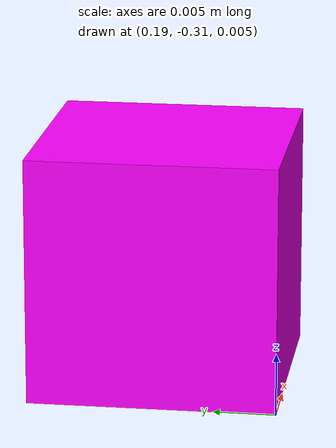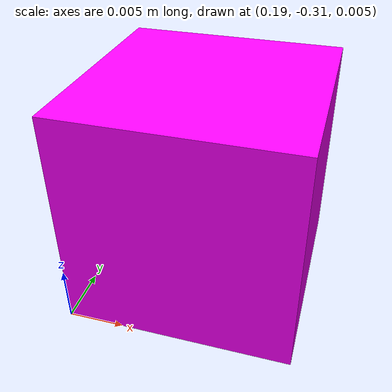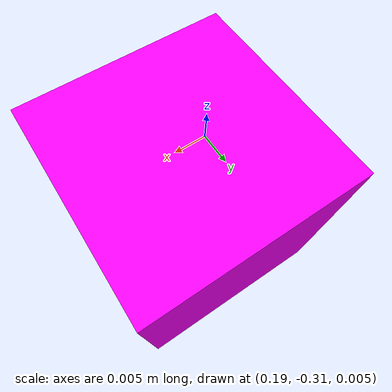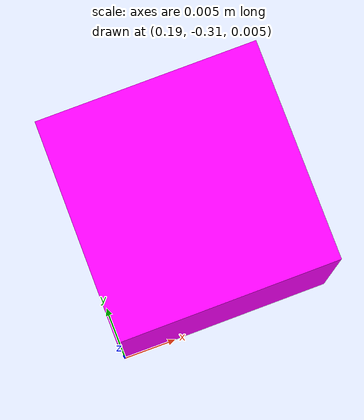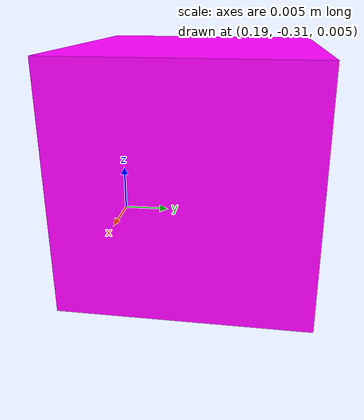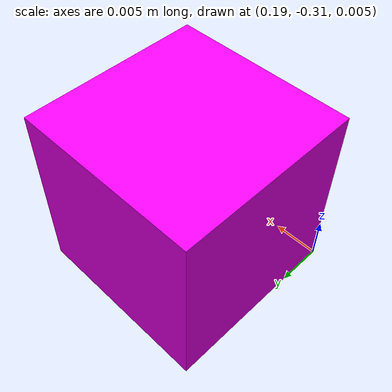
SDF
<?xml version="1.0" ?>
<sdf version="1.9">
  <world name="grape_world">
    <model name="grape">
      <static>true</static>
      <pose>0.2 -0.3 0.015 0 0 0</pose>
      <link name="grape_link">
	<collision name="grape_collision">
	  <geometry>
	    <box><size>0.02 0.02 0.02</size></box>
	  </geometry>
	</collision>
	<visual name="grape_visual">
	  <geometry>
	    <box> <size>0.02 0.02 0.02</size> </box>
	  </geometry>
	  <material>
	    <ambient>1. 0.001 1. 1</ambient>
	  </material>
	</visual>
      </link>
    </model>
  </world>
</sdf>
